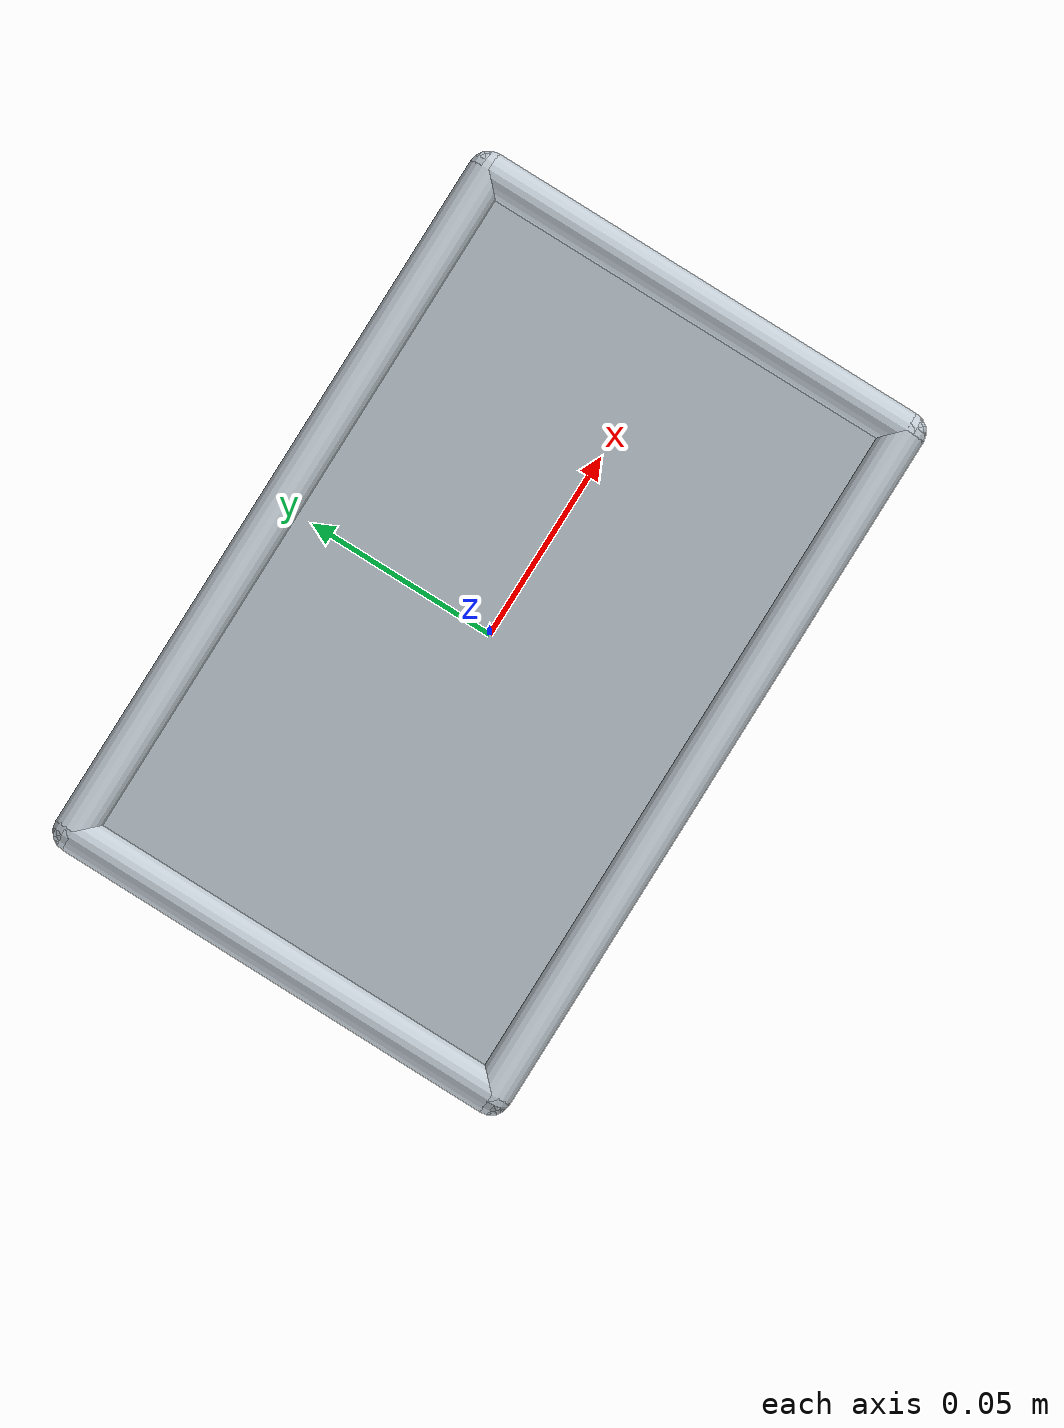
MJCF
<mujoco model="instrument_tray">
  <worldbody>
    <body>
      <body name="object">
        <site name="contain_region" type="box" pos="0 0 0.018" quat="1 0 0 0"
              size="0.085 0.052 0.018" rgba="0 0 0 0"/>
        <geom name="tray_bottom" type="box" pos="0 0 0.003"
              size="0.092 0.059 0.003" rgba="0.68 0.72 0.75 1"
              contype="0" conaffinity="0" group="1"/>
        <geom name="tray_left" type="capsule"
              fromto="-0.092 -0.058 0.018 -0.092 0.058 0.018"
              size="0.005" rgba="0.78 0.82 0.85 1"
              contype="0" conaffinity="0" group="1"/>
        <geom name="tray_right" type="capsule"
              fromto="0.092 -0.058 0.018 0.092 0.058 0.018"
              size="0.005" rgba="0.78 0.82 0.85 1"
              contype="0" conaffinity="0" group="1"/>
        <geom name="tray_front" type="capsule"
              fromto="-0.092 -0.058 0.018 0.092 -0.058 0.018"
              size="0.005" rgba="0.78 0.82 0.85 1"
              contype="0" conaffinity="0" group="1"/>
        <geom name="tray_back" type="capsule"
              fromto="-0.092 0.058 0.018 0.092 0.058 0.018"
              size="0.005" rgba="0.78 0.82 0.85 1"
              contype="0" conaffinity="0" group="1"/>
        <geom name="tray_bottom_collision" type="box" pos="0 0 0.003"
              size="0.092 0.059 0.003" rgba="0 0 0 0"
              density="5000" friction="0.9 0.005 0.0001" group="0"/>
        <geom name="tray_left_collision" type="capsule"
              fromto="-0.092 -0.058 0.018 -0.092 0.058 0.018"
              size="0.005" rgba="0 0 0 0" density="5000" group="0"/>
        <geom name="tray_right_collision" type="capsule"
              fromto="0.092 -0.058 0.018 0.092 0.058 0.018"
              size="0.005" rgba="0 0 0 0" density="5000" group="0"/>
        <geom name="tray_front_collision" type="capsule"
              fromto="-0.092 -0.058 0.018 0.092 -0.058 0.018"
              size="0.005" rgba="0 0 0 0" density="5000" group="0"/>
        <geom name="tray_back_collision" type="capsule"
              fromto="-0.092 0.058 0.018 0.092 0.058 0.018"
              size="0.005" rgba="0 0 0 0" density="5000" group="0"/>
      </body>
      <site name="bottom_site" pos="0 0 0" size="0.003" rgba="0 0 0 0"/>
      <site name="top_site" pos="0 0 0.024" size="0.003" rgba="0 0 0 0"/>
      <site name="horizontal_radius_site" pos="0.097 0.063 0.018"
            size="0.003" rgba="0 0 0 0"/>
    </body>
  </worldbody>
</mujoco>
